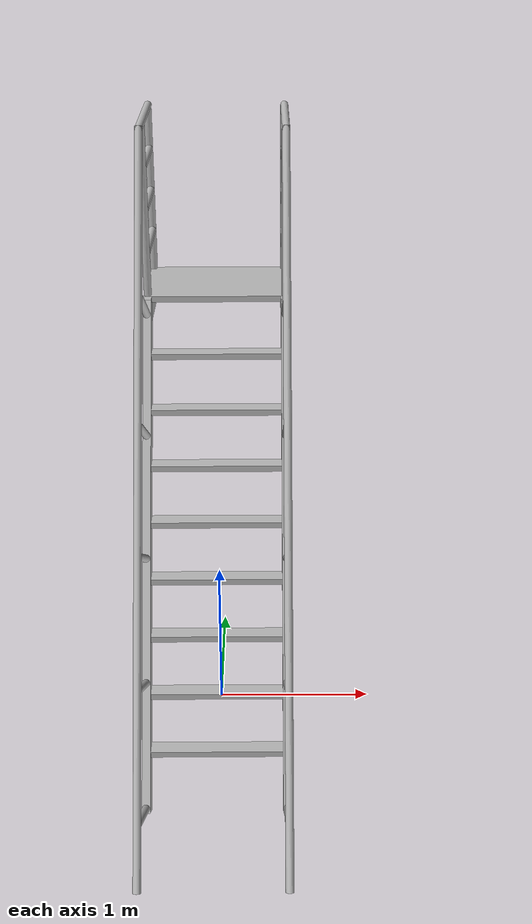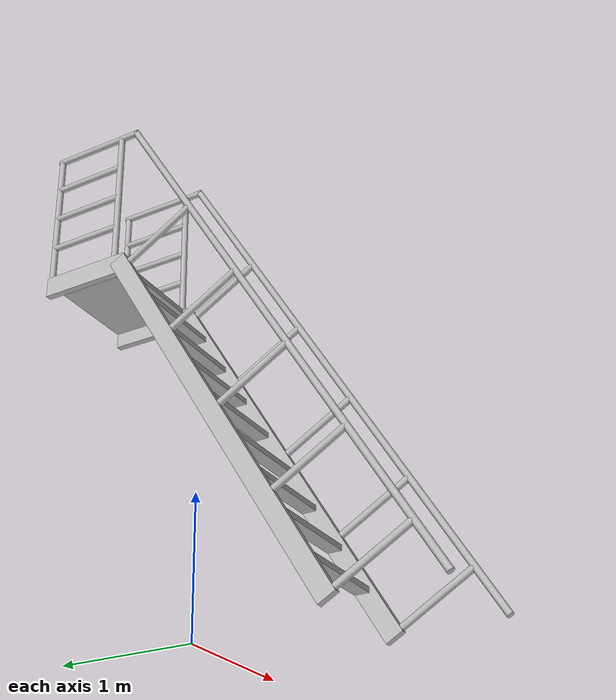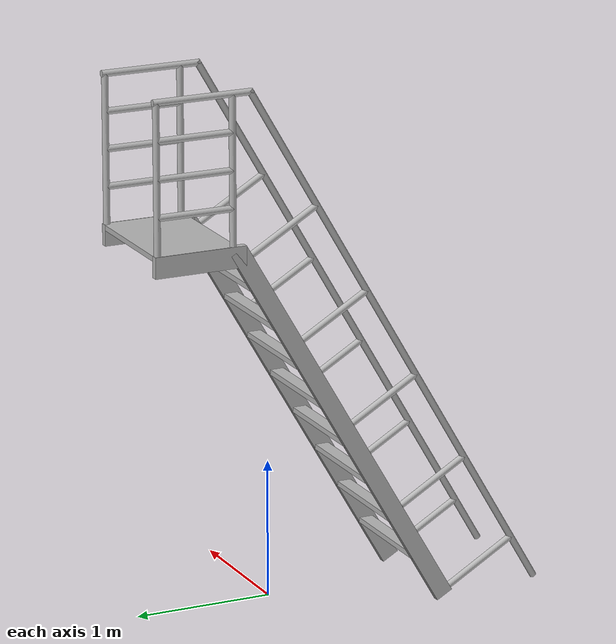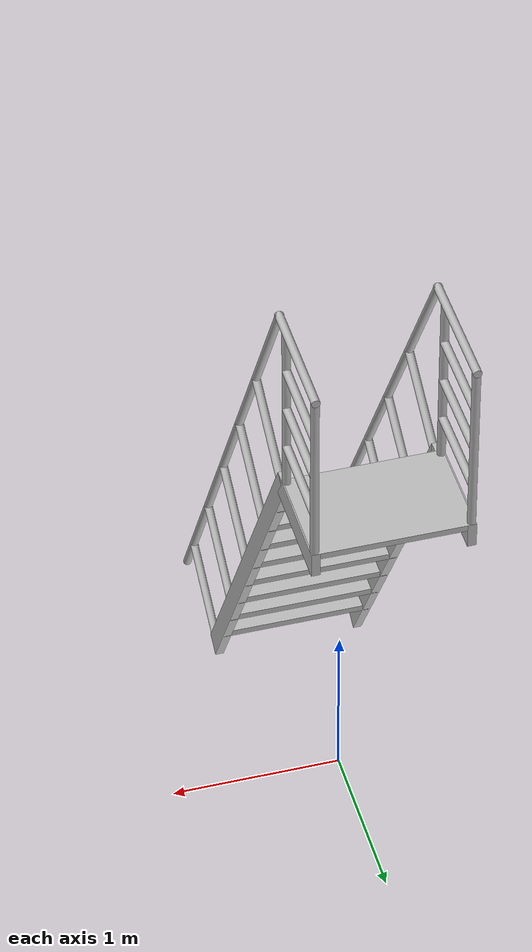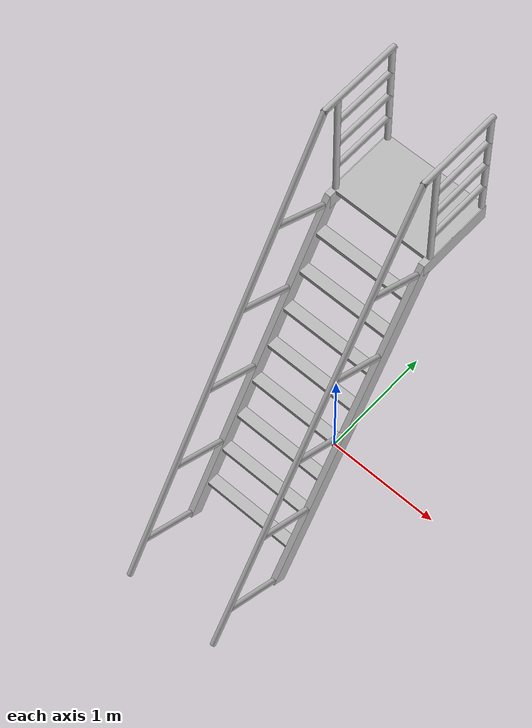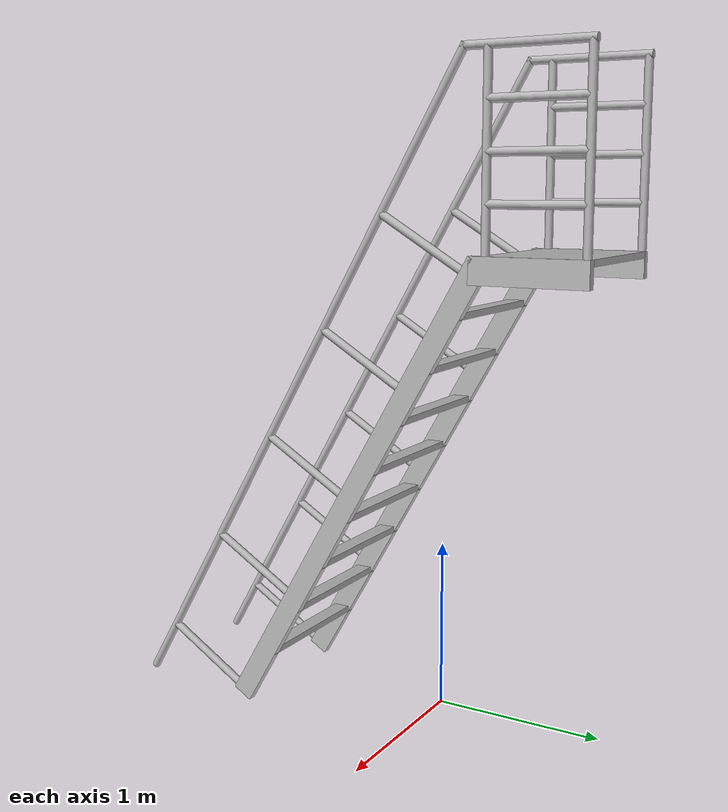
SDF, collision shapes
<?xml version="1.0" ?>
<sdf version="1.4">
  <model name="ladder">
    <static>true</static>
    <link name="link">
      <collision name="step0">
        <pose>0 -0.96703 0.2860 0 0 0</pose>
        <geometry>
          <box>
            <size>0.9 0.1016 0.0381</size>
          </box>
        </geometry>
      </collision>

      <collision name="step1">
        <pose>0 -0.79106 0.59054 0 0 0</pose>
        <geometry>
          <box>
            <size>0.9 0.1016 0.0381</size>
          </box>
        </geometry>
      </collision>

      <collision name="step2">
        <pose>0 -0.61509 0.89508 0 0 0</pose>
        <geometry>
          <box>
            <size>0.9 0.1016 0.0381</size>
          </box>
        </geometry>
      </collision>

      <collision name="step3">
        <pose>0 -0.43912 1.19962 0 0 0</pose>
        <geometry>
          <box>
            <size>0.9 0.1016 0.0381</size>
          </box>
        </geometry>
      </collision>

      <collision name="step4">
        <pose>0 -0.26315 1.50416 0 0 0</pose>
        <geometry>
          <box>
            <size>0.9 0.1016 0.0381</size>
          </box>
        </geometry>
      </collision>

      <collision name="step5">
        <pose>0 -0.08718 1.8087 0 0 0</pose>
        <geometry>
          <box>
            <size>0.9 0.1016 0.0381</size>
          </box>
        </geometry>
      </collision>

      <collision name="step6">
        <pose>0 0.08879 2.11324 0 0 0</pose>
        <geometry>
          <box>
            <size>0.9 0.1016 0.0381</size>
          </box>
        </geometry>
      </collision>

      <collision name="step7">
        <pose>0 0.26476 2.41778 0 0 0</pose>
        <geometry>
          <box>
            <size>0.9 0.1016 0.0381</size>
          </box>
        </geometry>
      </collision>

      <collision name="landing">
        <pose>0 0.73039 2.72432 0 0 0</pose>
        <geometry>
          <box>
            <size>0.9 0.6096 0.0381</size>
          </box>
        </geometry>
      </collision>

      <collision name="left_side_wall">
        <pose>-0.43217 -0.37451 1.33860 1.0471968 0 0</pose>
        <geometry>
          <box>
            <size>0.0508 3.16757588 0.13</size>
          </box>
        </geometry>
      </collision>
      <collision name="left_side_landing_wall">
        <pose>-0.43217 0.69819 2.667 0 0 0</pose>
        <geometry>
          <box>
            <size>0.0508 0.67401 0.1524</size>
          </box>
        </geometry>
      </collision>
      <collision name="left_railing_landing_3">
        <pose>-0.433355 0.66933 3.81 1.5707 0 0</pose>
        <geometry>
          <cylinder>
            <radius>0.02413</radius>
            <length>0.73172</length>
          </cylinder>
        </geometry>
      </collision>
      <collision name="left_railing_landing_2">
        <pose>-0.433355 0.73166 3.5433 1.5707 0 0</pose>
        <geometry>
          <cylinder>
            <radius>0.02413</radius>
            <length>0.5588</length>
          </cylinder>
        </geometry>
      </collision>
      <collision name="left_railing_landing_1">
        <pose>-0.433355 0.73166 3.27660 1.5707 0 0</pose>
        <geometry>
          <cylinder>
            <radius>0.02413</radius>
            <length>0.5588</length>
          </cylinder>
        </geometry>
      </collision>
      <collision name="left_railing_landing_0">
        <pose>-0.433355 0.73166 3.0099 1.5707 0 0</pose>
        <geometry>
          <cylinder>
            <radius>0.02413</radius>
            <length>0.5588</length>
          </cylinder>
        </geometry>
      </collision>
      <collision name="left_railing_landing_upright_back">
        <pose>-0.433355 1.01088 3.27660 0 0 0</pose>
        <geometry>
          <cylinder>
            <radius>0.02413</radius>
            <length>1.0668</length>
          </cylinder>
        </geometry>
      </collision>
      <collision name="left_railing_landing_upright_front">
        <pose>-0.433355 0.45208 3.27660 0 0 0</pose>
        <geometry>
          <cylinder>
            <radius>0.02413</radius>
            <length>1.0668</length>
          </cylinder>
        </geometry>
      </collision>

      <collision name="left_railing_upright_4">
        <pose>-0.433355 0.06990 2.80986 1.0341369 0 0</pose>
        <geometry>
          <cylinder>
            <radius>0.02413</radius>
            <length>0.57</length>
          </cylinder>
        </geometry>
      </collision>
      <collision name="left_railing_upright_3">
        <pose>-0.433355 -0.31006 2.15169 1.0341369 0 0</pose>
        <geometry>
          <cylinder>
            <radius>0.02413</radius>
            <length>0.57</length>
          </cylinder>
        </geometry>
      </collision>
      <collision name="left_railing_upright_2">
        <pose>-0.433355 -0.69110 1.49172 1.0341369 0 0</pose>
        <geometry>
          <cylinder>
            <radius>0.02413</radius>
            <length>0.57</length>
          </cylinder>
        </geometry>
      </collision>
      <collision name="left_railing_upright_1">
        <pose>-0.433355 -1.07320 0.82995 1.0341369 0 0</pose>
        <geometry>
          <cylinder>
            <radius>0.02413</radius>
            <length>0.57</length>
          </cylinder>
        </geometry>
      </collision>
      <collision name="left_railing_upright_0">
        <pose>-0.433355 -1.45316 0.17179 1.0341369 0 0</pose>
        <geometry>
          <cylinder>
            <radius>0.02413</radius>
            <length>0.57</length>
          </cylinder>
        </geometry>
      </collision>

      <collision name="left_railing_long">
        <pose>-0.433355 -0.7810 1.9068 -0.5235032 0 0</pose>
        <geometry>
          <cylinder>
            <radius>0.02413</radius>
            <length>4.422950887</length>
          </cylinder>
        </geometry>
      </collision>

      <collision name="right_side_wall">
        <pose>0.43217 -0.37451 1.33860 1.0471968 0 0</pose>
        <geometry>
          <box>
            <size>0.0508 3.16757588 0.13</size>
          </box>
        </geometry>
      </collision>
      <collision name="right_side_landing_wall">
        <pose>0.43217 0.69819 2.667 0 0 0</pose>
        <geometry>
          <box>
            <size>0.0508 0.67401 0.1524</size>
          </box>
        </geometry>
      </collision>
      <collision name="right_railing_landing_3">
        <pose>0.433355 0.66933 3.81 1.5707 0 0</pose>
        <geometry>
          <cylinder>
            <radius>0.02413</radius>
            <length>0.73172</length>
          </cylinder>
        </geometry>
      </collision>
      <collision name="right_railing_landing_2">
        <pose>0.433355 0.73166 3.5433 1.5707 0 0</pose>
        <geometry>
          <cylinder>
            <radius>0.02413</radius>
            <length>0.5588</length>
          </cylinder>
        </geometry>
      </collision>
      <collision name="right_railing_landing_1">
        <pose>0.433355 0.73166 3.27660 1.5707 0 0</pose>
        <geometry>
          <cylinder>
            <radius>0.02413</radius>
            <length>0.5588</length>
          </cylinder>
        </geometry>
      </collision>
      <collision name="right_railing_landing_0">
        <pose>0.433355 0.73166 3.0099 1.5707 0 0</pose>
        <geometry>
          <cylinder>
            <radius>0.02413</radius>
            <length>0.5588</length>
          </cylinder>
        </geometry>
      </collision>
      <collision name="right_railing_landing_upright_back">
        <pose>0.433355 1.01088 3.27660 0 0 0</pose>
        <geometry>
          <cylinder>
            <radius>0.02413</radius>
            <length>1.0668</length>
          </cylinder>
        </geometry>
      </collision>
      <collision name="right_railing_landing_upright_front">
        <pose>0.433355 0.45208 3.27660 0 0 0</pose>
        <geometry>
          <cylinder>
            <radius>0.02413</radius>
            <length>1.0668</length>
          </cylinder>
        </geometry>
      </collision>

      <collision name="right_railing_upright_4">
        <pose>0.433355 0.06990 2.80986 1.0341369 0 0</pose>
        <geometry>
          <cylinder>
            <radius>0.02413</radius>
            <length>0.57</length>
          </cylinder>
        </geometry>
      </collision>
      <collision name="right_railing_upright_3">
        <pose>0.433355 -0.31006 2.15169 1.0341369 0 0</pose>
        <geometry>
          <cylinder>
            <radius>0.02413</radius>
            <length>0.57</length>
          </cylinder>
        </geometry>
      </collision>
      <collision name="right_railing_upright_2">
        <pose>0.433355 -0.69110 1.49172 1.0341369 0 0</pose>
        <geometry>
          <cylinder>
            <radius>0.02413</radius>
            <length>0.57</length>
          </cylinder>
        </geometry>
      </collision>
      <collision name="right_railing_upright_1">
        <pose>0.433355 -1.07320 0.82995 1.0341369 0 0</pose>
        <geometry>
          <cylinder>
            <radius>0.02413</radius>
            <length>0.57</length>
          </cylinder>
        </geometry>
      </collision>
      <collision name="right_railing_upright_0">
        <pose>0.433355 -1.45316 0.17179 1.0341369 0 0</pose>
        <geometry>
          <cylinder>
            <radius>0.02413</radius>
            <length>0.57</length>
          </cylinder>
        </geometry>
      </collision>

      <collision name="right_railing_long">
        <pose>0.433355 -0.7810 1.9068 -0.5235032 0 0</pose>
        <geometry>
          <cylinder>
            <radius>0.02413</radius>
            <length>4.422950887</length>
          </cylinder>
        </geometry>
      </collision>

      <visual name="visual">
        <geometry>
          <mesh>
            <uri>model://../model_source/models/drc_practice_ladder/meshes/ladder.dae</uri>
          </mesh>
        </geometry>
      </visual>
    </link>
  </model>
</sdf>
